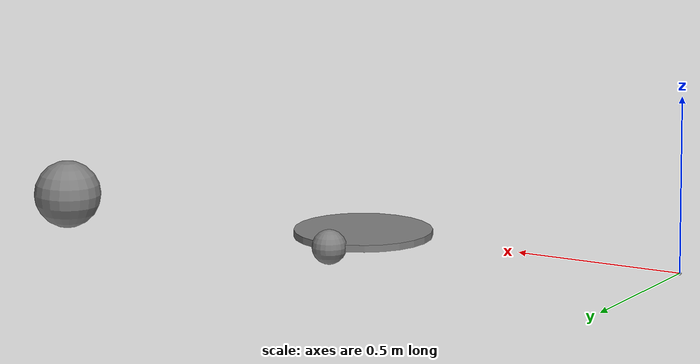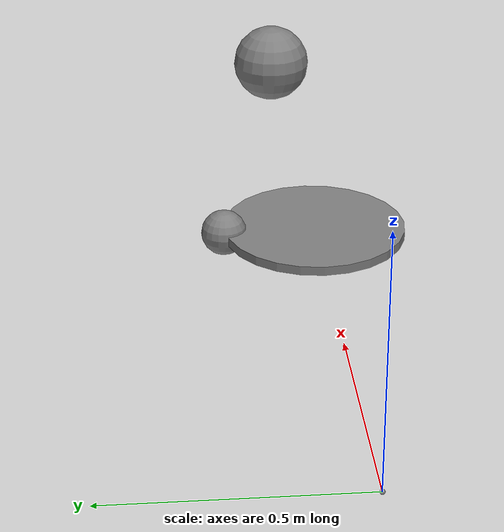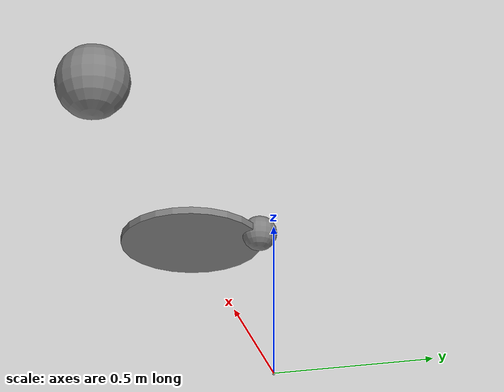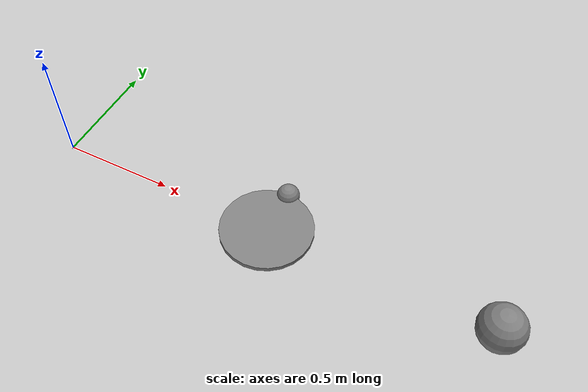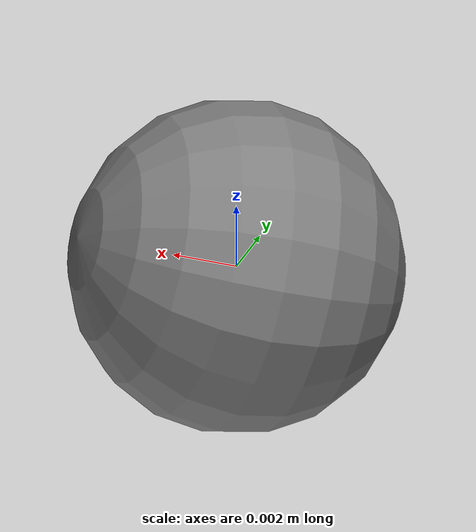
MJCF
<mujoco>
  <compiler angle="degree"/>
  <worldbody>
    <site name="slidersite" euler="0 90 0"/>
    <body pos="1 0 0">
      <joint type="hinge" axis="0 0 1"/>
      <geom type="sphere" size=".05" pos="0 0.2 0"/>
      <geom type="cylinder" size=".2 .01"/>
      <site name="cranksite" pos="0 0.2 0"/>
    </body>
    <!-- unactuated -->
    <body pos="2 0 0">
      <joint name="unactuated" type="hinge" axis="1 0 0"/>
      <geom type="sphere" size=".1"/>
    </body>
  </worldbody>
  <actuator>
    <motor cranklength="0.25" cranksite="cranksite" slidersite="slidersite"/>
  </actuator>
</mujoco>
